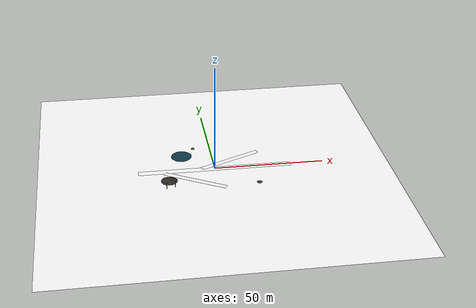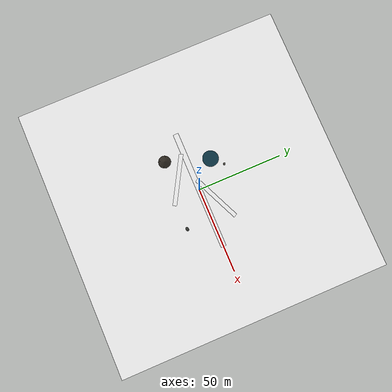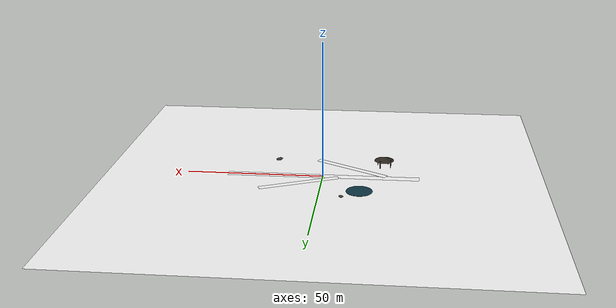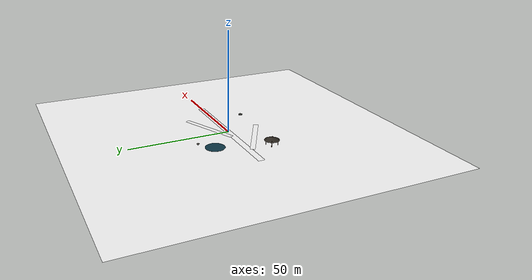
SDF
<sdf version="1.9">
 <world name="aerointercept_park">
  <physics name="physics" type="ode">
   <max_step_size>0.004</max_step_size>
   <real_time_factor>1.0</real_time_factor>
   <real_time_update_rate>250</real_time_update_rate>
  </physics>
  <gravity>0 0 -9.8</gravity>
  <magnetic_field>6e-06 2.3e-05 -4.2e-05</magnetic_field>
  <atmosphere type="adiabatic"/>
  <plugin filename="gz-sim-physics-system" name="gz::sim::systems::Physics"/>
  <plugin filename="gz-sim-user-commands-system" name="gz::sim::systems::UserCommands"/>
  <plugin filename="gz-sim-scene-broadcaster-system" name="gz::sim::systems::SceneBroadcaster"/>
  <plugin filename="gz-sim-sensors-system" name="gz::sim::systems::Sensors">
   <render_engine>ogre2</render_engine>
  </plugin>
  <plugin filename="gz-sim-imu-system" name="gz::sim::systems::Imu"/>
  <plugin filename="gz-sim-air-pressure-system" name="gz::sim::systems::AirPressure"/>
  <plugin filename="gz-sim-magnetometer-system" name="gz::sim::systems::Magnetometer"/>
  <plugin filename="gz-sim-navsat-system" name="gz::sim::systems::NavSat"/>
  <spherical_coordinates>
   <surface_model>EARTH_WGS84</surface_model>
   <world_frame_orientation>ENU</world_frame_orientation>
   <latitude_deg>47.397971</latitude_deg>
   <longitude_deg>8.546163</longitude_deg>
   <elevation>488.0</elevation>
   <heading_deg>0</heading_deg>
  </spherical_coordinates>
  <scene>
   <grid>false</grid>
   <ambient>0.43 0.46 0.47 1</ambient>
   <background>0.58 0.70 0.82 1</background>
   <shadows>true</shadows>
   <sky><time>14.25</time><clouds><speed>0.05</speed><humidity>0.36</humidity></clouds></sky>
   <fog>
    <type>linear</type>
    <color>0.66 0.72 0.75 1</color>
    <start>85</start>
    <end>260</end>
    <density>0.002</density>
   </fog>
  </scene>
  <light name="sun" type="directional">
   <pose>0 0 100 0 0 0</pose>
   <diffuse>0.92 0.89 0.82 1</diffuse>
   <specular>0.12 0.12 0.11 1</specular>
   <direction>-0.36 0.24 -0.90</direction>
   <intensity>1.05</intensity>
  </light>
  <include><uri>model://aerointercept_park_surface</uri></include>
  <model name="park_details">
   <static>true</static>
   <link name="water_and_stone">
    <visual name="pond">
     <pose>-14 13 0.035 0 0 0</pose>
     <geometry><cylinder><radius>4.7</radius><length>0.06</length></cylinder></geometry>
     <material>
      <ambient>0.025 0.105 0.14 1</ambient>
      <diffuse>0.055 0.22 0.28 1</diffuse>
      <specular>0.82 0.82 0.82 1</specular>
      <pbr><metal><metalness>0.0</metalness><roughness>0.12</roughness></metal></pbr>
     </material>
    </visual>
    <collision name="boulder_0_collision">
     <pose>18 -15 .48 0 .15 .2</pose>
     <geometry><ellipsoid><radii>1.25 .84 .48</radii></ellipsoid></geometry>
    </collision>
    <visual name="boulder_0">
     <pose>18 -15 .48 0 .15 .2</pose>
     <geometry><ellipsoid><radii>1.25 .84 .48</radii></ellipsoid></geometry>
     <material>
      <diffuse>.24 .25 .23 1</diffuse>
      <pbr><metal><metalness>0.0</metalness><roughness>0.92</roughness></metal></pbr>
     </material>
    </visual>
    <collision name="boulder_1_collision">
     <pose>-8 19 .38 .1 0 -.3</pose>
     <geometry><ellipsoid><radii>.82 .62 .38</radii></ellipsoid></geometry>
    </collision>
    <visual name="boulder_1">
     <pose>-8 19 .38 .1 0 -.3</pose>
     <geometry><ellipsoid><radii>.82 .62 .38</radii></ellipsoid></geometry>
     <material>
      <diffuse>.31 .30 .27 1</diffuse>
      <pbr><metal><metalness>0.0</metalness><roughness>0.90</roughness></metal></pbr>
     </material>
    </visual>
   </link>
   <link name="pavilion">
    <pose>-22 -12 0 0 0 0.25</pose>
    <collision name="post_0_collision">
     <pose>-2 -2 1.45 0 0 0</pose>
     <geometry><cylinder><radius>.13</radius><length>2.9</length></cylinder></geometry>
    </collision>
    <collision name="post_1_collision">
     <pose>2 -2 1.45 0 0 0</pose>
     <geometry><cylinder><radius>.13</radius><length>2.9</length></cylinder></geometry>
    </collision>
    <collision name="post_2_collision">
     <pose>-2 2 1.45 0 0 0</pose>
     <geometry><cylinder><radius>.13</radius><length>2.9</length></cylinder></geometry>
    </collision>
    <collision name="post_3_collision">
     <pose>2 2 1.45 0 0 0</pose>
     <geometry><cylinder><radius>.13</radius><length>2.9</length></cylinder></geometry>
    </collision>
    <visual name="post_0">
     <pose>-2 -2 1.45 0 0 0</pose>
     <geometry><cylinder><radius>.13</radius><length>2.9</length></cylinder></geometry>
     <material><diffuse>.30 .20 .11 1</diffuse></material>
    </visual>
    <visual name="post_1">
     <pose>2 -2 1.45 0 0 0</pose>
     <geometry><cylinder><radius>.13</radius><length>2.9</length></cylinder></geometry>
     <material><diffuse>.30 .20 .11 1</diffuse></material>
    </visual>
    <visual name="post_2">
     <pose>-2 2 1.45 0 0 0</pose>
     <geometry><cylinder><radius>.13</radius><length>2.9</length></cylinder></geometry>
     <material><diffuse>.30 .20 .11 1</diffuse></material>
    </visual>
    <visual name="post_3">
     <pose>2 2 1.45 0 0 0</pose>
     <geometry><cylinder><radius>.13</radius><length>2.9</length></cylinder></geometry>
     <material><diffuse>.30 .20 .11 1</diffuse></material>
    </visual>
    <visual name="roof">
     <pose>0 0 3.05 0 0 0</pose>
     <geometry><cone><radius>3.6</radius><length>1.25</length></cone></geometry>
     <material>
      <diffuse>.18 .16 .13 1</diffuse>
      <pbr><metal><metalness>0.0</metalness><roughness>0.82</roughness></metal></pbr>
     </material>
    </visual>
   </link>
  </model>
 </world>
</sdf>

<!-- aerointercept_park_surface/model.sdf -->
<sdf version="1.9">
  <model name="aerointercept_park_surface">
    <static>true</static>
    <link name="surface">
      <collision name="ground_collision">
        <geometry><plane><normal>0 0 1</normal><size>160 160</size></plane></geometry>
        <surface><friction><ode><mu>0.85</mu><mu2>0.85</mu2></ode></friction></surface>
      </collision>
      <visual name="meadow">
        <cast_shadows>false</cast_shadows>
        <geometry><mesh><uri>meshes/ground.obj</uri></mesh></geometry>
        <material>
          <ambient>0.34 0.38 0.27 1</ambient><diffuse>1 1 1 1</diffuse><specular>0.02 0.02 0.02 1</specular>
          <pbr><metal>
            <albedo_map>materials/textures/meadow_albedo.png</albedo_map>
            <metalness>0.0</metalness><roughness>0.94</roughness>
          </metal></pbr>
        </material>
      </visual>
      <visual name="main_gravel_path">
        <pose>0 0 0.018 0 0 0</pose>
        <geometry><mesh><uri>meshes/path_long.obj</uri></mesh></geometry>
        <material>
          <ambient>0.42 0.36 0.28 1</ambient><diffuse>1 1 1 1</diffuse><specular>0.03 0.03 0.03 1</specular>
          <pbr><metal>
            <albedo_map>materials/textures/gravel_albedo.png</albedo_map>
            <metalness>0.0</metalness><roughness>0.89</roughness>
          </metal></pbr>
        </material>
      </visual>
      <visual name="north_gravel_path">
        <pose>8 7 0.020 0 0 0.42</pose>
        <geometry><mesh><uri>meshes/path_short.obj</uri></mesh></geometry>
        <material>
          <ambient>0.42 0.36 0.28 1</ambient><diffuse>1 1 1 1</diffuse><specular>0.03 0.03 0.03 1</specular>
          <pbr><metal>
            <albedo_map>materials/textures/gravel_albedo.png</albedo_map>
            <metalness>0.0</metalness><roughness>0.89</roughness>
          </metal></pbr>
        </material>
      </visual>
      <visual name="south_gravel_path">
        <pose>-10 -9 0.020 0 0 -0.52</pose>
        <geometry><mesh><uri>meshes/path_short.obj</uri></mesh></geometry>
        <material>
          <ambient>0.42 0.36 0.28 1</ambient><diffuse>1 1 1 1</diffuse><specular>0.03 0.03 0.03 1</specular>
          <pbr><metal>
            <albedo_map>materials/textures/gravel_albedo.png</albedo_map>
            <metalness>0.0</metalness><roughness>0.89</roughness>
          </metal></pbr>
        </material>
      </visual>
    </link>
  </model>
</sdf>
